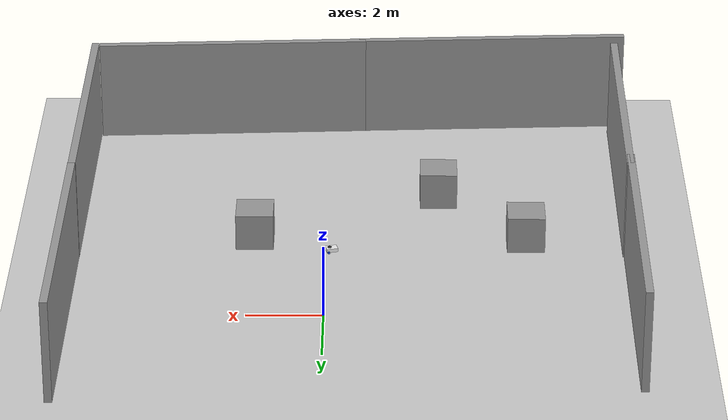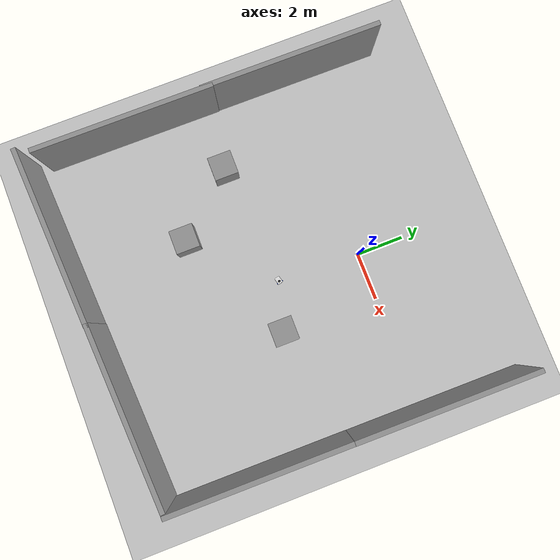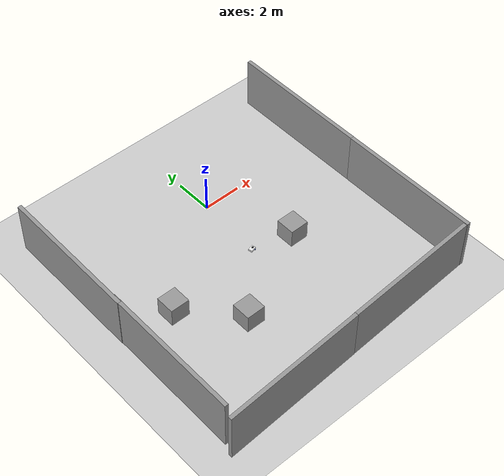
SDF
<sdf version="1.7">
 <world name="default">
  <light name="sun" type="directional">
   <pose>0 0 10 0 -0 0</pose>
   <diffuse>0.8 0.8 0.8 1</diffuse>
   <specular>0.2 0.2 0.2 1</specular>
   <attenuation>
    <range>1000</range>
    <constant>0.9</constant>
    <linear>0.01</linear>
    <quadratic>0.001</quadratic>
   </attenuation>
   <direction>-0.5 0.1 -0.9</direction>
   <spot><inner_angle>0</inner_angle><outer_angle>0</outer_angle><falloff>0</falloff></spot>
  </light>
  <model name="ground_plane">
   <static>1</static>
   <link name="link">
    <collision name="collision">
     <geometry><plane><normal>0 0 1</normal><size>100 100</size></plane></geometry>
     <surface><friction><ode><mu>100</mu><mu2>50</mu2></ode></friction></surface>
    </collision>
    <visual name="visual">
     <cast_shadows>0</cast_shadows>
     <geometry><plane><normal>0 0 1</normal><size>100 100</size></plane></geometry>
     <material>
      <script><uri>file://media/materials/scripts/gazebo.material</uri><name>Gazebo/Grey</name></script>
     </material>
    </visual>
   </link>
  </model>
  <gravity>0 0 -9.8</gravity>
  <magnetic_field>6e-06 2.3e-05 -4.2e-05</magnetic_field>
  <atmosphere type="adiabatic"/>
  <physics type="ode">
   <max_step_size>0.001</max_step_size>
   <real_time_factor>1</real_time_factor>
   <real_time_update_rate>1000</real_time_update_rate>
  </physics>
  <scene><ambient>0.4 0.4 0.4 1</ambient><background>0.7 0.7 0.7 1</background><shadows>1</shadows></scene>
  <audio><device>default</device></audio>
  <spherical_coordinates>
   <surface_model>EARTH_WGS84</surface_model>
   <latitude_deg>0</latitude_deg>
   <longitude_deg>0</longitude_deg>
   <elevation>0</elevation>
   <heading_deg>0</heading_deg>
  </spherical_coordinates>
  <model name="my_robot">
   <link name="base_link">
    <inertial>
     <pose>0.053571 0 0.05 0 -0 0</pose>
     <mass>0.7</mass>
     <inertia>
      <ixx>0.00530558</ixx>
      <ixy>0</ixy>
      <ixz>0.000625</ixz>
      <iyy>0.00610915</iyy>
      <iyz>0</iyz>
      <izz>0.00847082</izz>
     </inertia>
    </inertial>
    <collision name="base_link_fixed_joint_lump__chassis_collision">
     <pose>0.05 0 0.05 0 -0 0</pose>
     <geometry><box><size>0.3 0.22 0.1</size></box></geometry>
    </collision>
    <collision name="base_link_fixed_joint_lump__caster_wheel_collision_1">
     <pose>0.125 0 0 0 -0 0</pose>
     <geometry><sphere><radius>0.0325</radius></sphere></geometry>
     <surface><friction><ode><mu>0.1</mu><mu2>0.1</mu2></ode></friction></surface>
    </collision>
    <collision name="base_link_fixed_joint_lump__laser_frame_collision_2">
     <pose>0 0 0.1 0 -0 0</pose>
     <geometry><cylinder><length>0.04</length><radius>0.05</radius></cylinder></geometry>
    </collision>
    <visual name="base_link_fixed_joint_lump__chassis_visual">
     <pose>0.05 0 0.05 0 -0 0</pose>
     <geometry><box><size>0.3 0.22 0.1</size></box></geometry>
     <material>
      <script><name>Gazebo/White</name><uri>file://media/materials/scripts/gazebo.material</uri></script>
     </material>
    </visual>
    <visual name="base_link_fixed_joint_lump__caster_wheel_visual_1">
     <pose>0.125 0 0 0 -0 0</pose>
     <geometry><sphere><radius>0.0325</radius></sphere></geometry>
     <material>
      <script><name>Gazebo/Black</name><uri>file://media/materials/scripts/gazebo.material</uri></script>
     </material>
    </visual>
    <visual name="base_link_fixed_joint_lump__laser_frame_visual_2">
     <pose>0 0 0.1 0 -0 0</pose>
     <geometry><cylinder><length>0.04</length><radius>0.05</radius></cylinder></geometry>
     <material>
      <script><name>Gazebo/Black</name><uri>file://media/materials/scripts/gazebo.material</uri></script>
     </material>
    </visual>
    <sensor name="laser" type="ray">
     <visualize>1</visualize>
     <update_rate>10</update_rate>
     <ray>
      <scan>
       <horizontal>
        <samples>360</samples>
        <min_angle>-3.14</min_angle>
        <max_angle>3.14</max_angle>
        <resolution>1</resolution>
       </horizontal>
       <vertical><samples>1</samples><min_angle>0</min_angle><max_angle>0</max_angle></vertical>
      </scan>
      <range><min>0.3</min><max>12</max></range>
     </ray>
     <plugin name="laser_controller" filename="libgazebo_ros_ray_sensor.so">
      <ros><argument>~/out:=scan</argument></ros>
      <output_type>sensor_msgs/LaserScan</output_type>
      <frame_name>laser_frame</frame_name>
     </plugin>
     <pose>0 0 0.1 0 -0 0</pose>
    </sensor>
   </link>
   <joint name="left_wheel_joint" type="revolute">
    <pose relative_to="base_link">-0.05 0.1225 0 -1.5708 0 0</pose>
    <parent>base_link</parent>
    <child>left_wheel</child>
    <axis>
     <xyz>0 0 1</xyz>
     <limit><lower>-1e+16</lower><upper>1e+16</upper></limit>
     <dynamics><spring_reference>0</spring_reference><spring_stiffness>0</spring_stiffness></dynamics>
    </axis>
   </joint>
   <link name="left_wheel">
    <pose relative_to="left_wheel_joint">0 0 0 0 -0 0</pose>
    <inertial>
     <mass>0.1</mass>
     <inertia>
      <ixx>3.16146e-05</ixx>
      <ixy>0</ixy>
      <ixz>0</ixz>
      <iyy>3.16146e-05</iyy>
      <iyz>0</iyz>
      <izz>5.28125e-05</izz>
     </inertia>
    </inertial>
    <collision name="left_wheel_collision">
     <geometry><cylinder><length>0.025</length><radius>0.0325</radius></cylinder></geometry>
    </collision>
    <visual name="left_wheel_visual">
     <geometry><cylinder><length>0.025</length><radius>0.0325</radius></cylinder></geometry>
     <material>
      <script><name>Gazebo/Blue</name><uri>file://media/materials/scripts/gazebo.material</uri></script>
     </material>
    </visual>
   </link>
   <joint name="right_wheel_joint" type="revolute">
    <pose relative_to="base_link">-0.05 -0.1225 0 1.5708 -0 0</pose>
    <parent>base_link</parent>
    <child>right_wheel</child>
    <axis>
     <xyz>0 0 -1</xyz>
     <limit><lower>-1e+16</lower><upper>1e+16</upper></limit>
     <dynamics><spring_reference>0</spring_reference><spring_stiffness>0</spring_stiffness></dynamics>
    </axis>
   </joint>
   <link name="right_wheel">
    <pose relative_to="right_wheel_joint">0 0 0 0 -0 0</pose>
    <inertial>
     <mass>0.1</mass>
     <inertia>
      <ixx>3.16146e-05</ixx>
      <ixy>0</ixy>
      <ixz>0</ixz>
      <iyy>3.16146e-05</iyy>
      <iyz>0</iyz>
      <izz>5.28125e-05</izz>
     </inertia>
    </inertial>
    <collision name="right_wheel_collision">
     <geometry><cylinder><length>0.025</length><radius>0.0325</radius></cylinder></geometry>
    </collision>
    <visual name="right_wheel_visual">
     <geometry><cylinder><length>0.025</length><radius>0.0325</radius></cylinder></geometry>
     <material>
      <script><name>Gazebo/Blue</name><uri>file://media/materials/scripts/gazebo.material</uri></script>
     </material>
    </visual>
   </link>
   <static>0</static>
   <plugin name="diff_drive" filename="libgazebo_ros_diff_drive.so">
    <left_joint>left_wheel_joint</left_joint>
    <right_joint>right_wheel_joint</right_joint>
    <wheel_separation>0.35</wheel_separation>
    <wheel_diameter>0.1</wheel_diameter>
    <max_wheel_torque>200</max_wheel_torque>
    <max_wheel_acceleration>10.0</max_wheel_acceleration>
    <odometry_frame>odom</odometry_frame>
    <robot_base_freem>base_link</robot_base_freem>
    <publish_odom>1</publish_odom>
    <publish_odom_tf>1</publish_odom_tf>
    <putlish_wheel_tf>1</putlish_wheel_tf>
   </plugin>
   <pose>-0.103593 -3.4775 0.0325 -3e-06 2e-06 -2.88929</pose>
  </model>
  <model name="grey_wall">
   <static>1</static>
   <link name="link">
    <pose>0 0 1.4 0 -0 0</pose>
    <collision name="collision"><geometry><box><size>7.5 0.2 2.8</size></box></geometry></collision>
    <visual name="visual">
     <cast_shadows>0</cast_shadows>
     <geometry><box><size>7.5 0.2 2.8</size></box></geometry>
     <material>
      <script>
       <uri>model://grey_wall/materials/scripts</uri>
       <uri>model://grey_wall/materials/textures</uri>
       <name>vrc/grey_wall</name>
      </script>
     </material>
    </visual>
   </link>
   <pose>-8 0 0 0 -0 1.56671</pose>
  </model>
  <model name="grey_wall_clone">
   <static>1</static>
   <link name="link">
    <pose>0 0 1.4 0 -0 0</pose>
    <collision name="collision"><geometry><box><size>7.5 0.2 2.8</size></box></geometry></collision>
    <visual name="visual">
     <cast_shadows>0</cast_shadows>
     <geometry><box><size>7.5 0.2 2.8</size></box></geometry>
     <material>
      <script>
       <uri>model://grey_wall/materials/scripts</uri>
       <uri>model://grey_wall/materials/textures</uri>
       <name>vrc/grey_wall</name>
      </script>
     </material>
    </visual>
   </link>
   <pose>-8 -7 0 0 -0 1.56671</pose>
  </model>
  <model name="grey_wall_clone_clone">
   <static>1</static>
   <link name="link">
    <pose>0 0 1.4 0 -0 0</pose>
    <collision name="collision"><geometry><box><size>7.5 0.2 2.8</size></box></geometry></collision>
    <visual name="visual">
     <cast_shadows>0</cast_shadows>
     <geometry><box><size>7.5 0.2 2.8</size></box></geometry>
     <material>
      <script>
       <uri>model://grey_wall/materials/scripts</uri>
       <uri>model://grey_wall/materials/textures</uri>
       <name>vrc/grey_wall</name>
      </script>
     </material>
    </visual>
   </link>
   <pose>-4.58418 -11.1009 0 0 -0 0.050653</pose>
  </model>
  <model name="grey_wall_clone_clone_0">
   <static>1</static>
   <link name="link">
    <pose>0 0 1.4 0 -0 0</pose>
    <collision name="collision"><geometry><box><size>7.5 0.2 2.8</size></box></geometry></collision>
    <visual name="visual">
     <cast_shadows>0</cast_shadows>
     <geometry><box><size>7.5 0.2 2.8</size></box></geometry>
     <material>
      <script>
       <uri>model://grey_wall/materials/scripts</uri>
       <uri>model://grey_wall/materials/textures</uri>
       <name>vrc/grey_wall</name>
      </script>
     </material>
    </visual>
   </link>
   <pose>6.65172 0.618879 -0 0 -0 1.56671</pose>
  </model>
  <model name="grey_wall_clone_clone_clone">
   <static>1</static>
   <link name="link">
    <pose>0 0 1.4 0 -0 0</pose>
    <collision name="collision"><geometry><box><size>7.5 0.2 2.8</size></box></geometry></collision>
    <visual name="visual">
     <cast_shadows>0</cast_shadows>
     <geometry><box><size>7.5 0.2 2.8</size></box></geometry>
     <material>
      <script>
       <uri>model://grey_wall/materials/scripts</uri>
       <uri>model://grey_wall/materials/textures</uri>
       <name>vrc/grey_wall</name>
      </script>
     </material>
    </visual>
   </link>
   <pose>6.6144 -6.8811 0 0 -0 1.56671</pose>
  </model>
  <model name="grey_wall_clone_clone_clone_0">
   <static>1</static>
   <link name="link">
    <pose>0 0 1.4 0 -0 0</pose>
    <collision name="collision"><geometry><box><size>7.5 0.2 2.8</size></box></geometry></collision>
    <visual name="visual">
     <cast_shadows>0</cast_shadows>
     <geometry><box><size>7.5 0.2 2.8</size></box></geometry>
     <material>
      <script>
       <uri>model://grey_wall/materials/scripts</uri>
       <uri>model://grey_wall/materials/textures</uri>
       <name>vrc/grey_wall</name>
      </script>
     </material>
    </visual>
   </link>
   <pose>2.72971 -10.7198 0 0 -0 0.050653</pose>
  </model>
  <model name="unit_box">
   <pose>-5.32448 -3.97481 0.499995 -1e-05 -0 -0</pose>
   <link name="link">
    <inertial>
     <mass>1</mass>
     <inertia>
      <ixx>0.166667</ixx>
      <ixy>0</ixy>
      <ixz>0</ixz>
      <iyy>0.166667</iyy>
      <iyz>0</iyz>
      <izz>0.166667</izz>
     </inertia>
    </inertial>
    <collision name="collision"><geometry><box><size>1 1 1</size></box></geometry></collision>
    <visual name="visual">
     <geometry><box><size>1 1 1</size></box></geometry>
     <material>
      <script><name>Gazebo/Grey</name><uri>file://media/materials/scripts/gazebo.material</uri></script>
     </material>
    </visual>
   </link>
  </model>
  <model name="unit_box_0">
   <pose>-3.03071 -6.49624 0.499995 0 1e-05 0</pose>
   <link name="link">
    <inertial>
     <mass>1</mass>
     <inertia>
      <ixx>0.166667</ixx>
      <ixy>0</ixy>
      <ixz>0</ixz>
      <iyy>0.166667</iyy>
      <iyz>0</iyz>
      <izz>0.166667</izz>
     </inertia>
    </inertial>
    <collision name="collision"><geometry><box><size>1 1 1</size></box></geometry></collision>
    <visual name="visual">
     <geometry><box><size>1 1 1</size></box></geometry>
     <material>
      <script><name>Gazebo/Grey</name><uri>file://media/materials/scripts/gazebo.material</uri></script>
     </material>
    </visual>
   </link>
  </model>
  <model name="unit_box_1">
   <pose>1.89709 -4.07177 0.499995 -1e-05 -0 0</pose>
   <link name="link">
    <inertial>
     <mass>1</mass>
     <inertia>
      <ixx>0.166667</ixx>
      <ixy>0</ixy>
      <ixz>0</ixz>
      <iyy>0.166667</iyy>
      <iyz>0</iyz>
      <izz>0.166667</izz>
     </inertia>
    </inertial>
    <collision name="collision"><geometry><box><size>1 1 1</size></box></geometry></collision>
    <visual name="visual">
     <geometry><box><size>1 1 1</size></box></geometry>
     <material>
      <script><name>Gazebo/Grey</name><uri>file://media/materials/scripts/gazebo.material</uri></script>
     </material>
    </visual>
   </link>
  </model>
 </world>
</sdf>
